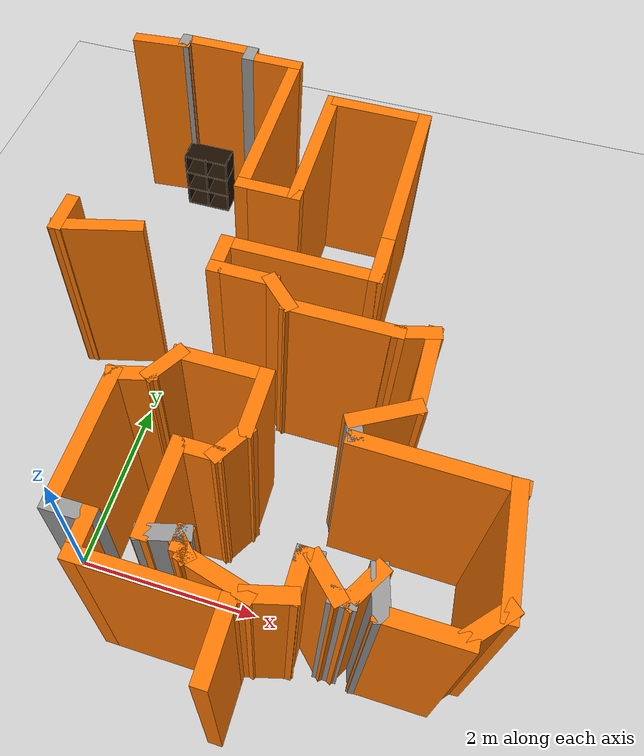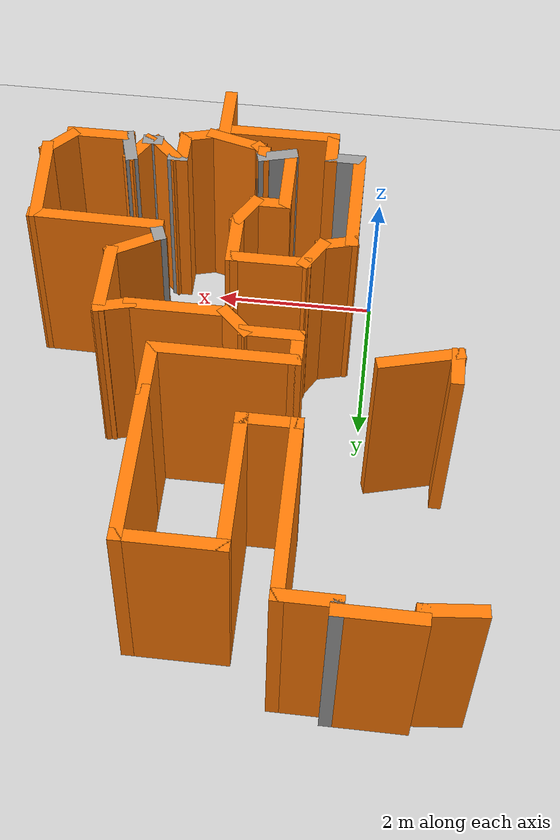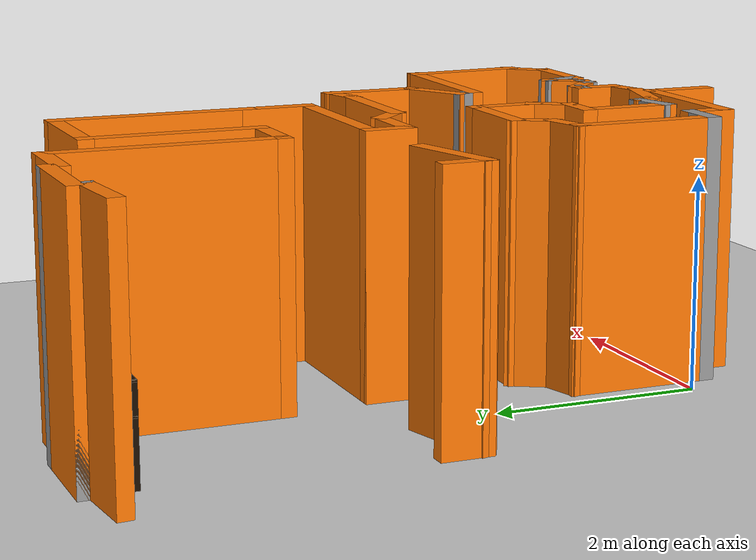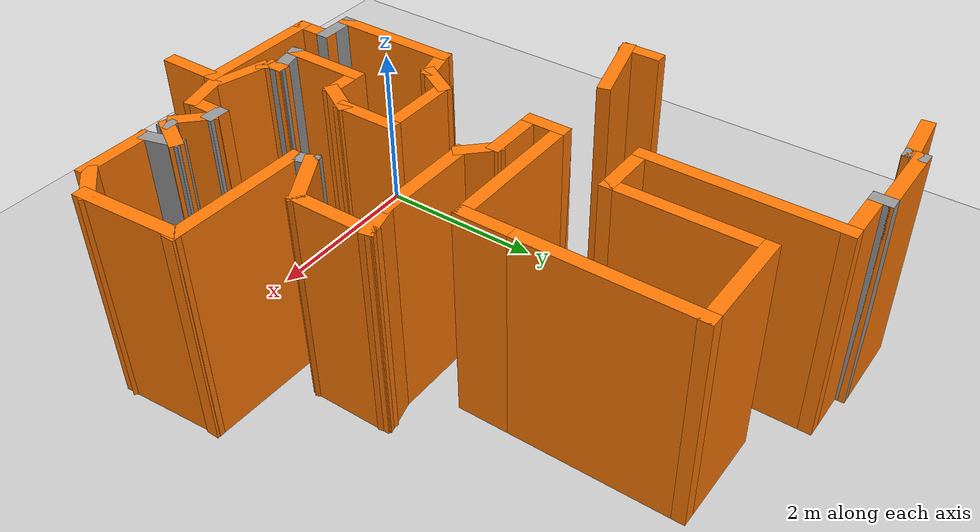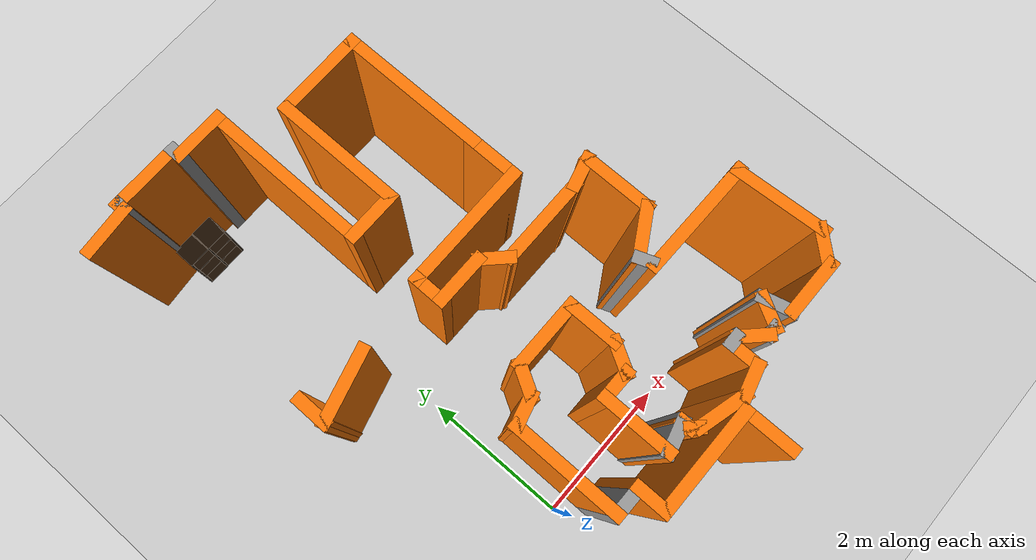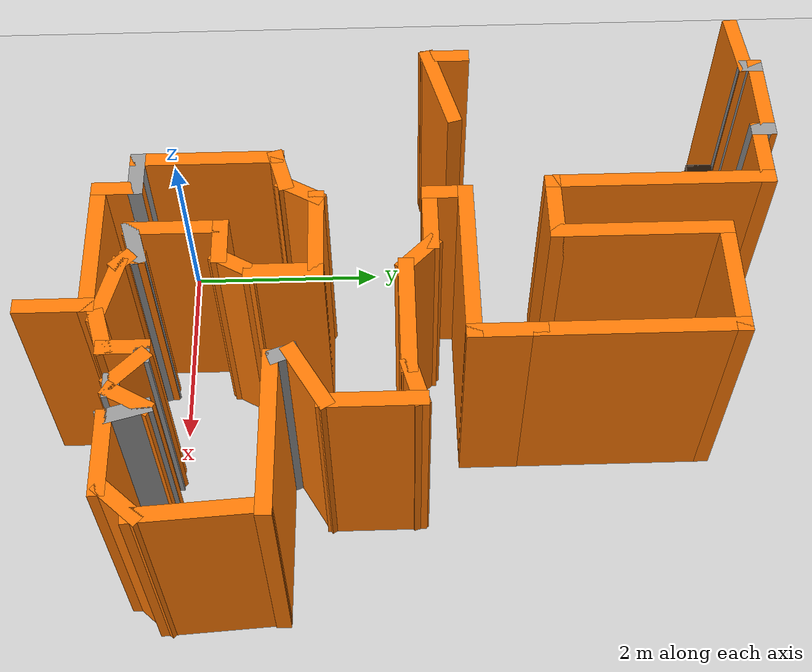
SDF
<sdf version="1.6">
 <world name="default">
  <model name="ground_plane">
   <static>1</static>
   <link name="link">
    <collision name="collision">
     <geometry><plane><normal>0 0 1</normal><size>100 100</size></plane></geometry>
     <surface>
      <contact><collide_bitmask>65535</collide_bitmask></contact>
      <friction><ode><mu>100</mu><mu2>50</mu2></ode></friction>
     </surface>
    </collision>
    <visual name="visual">
     <cast_shadows>0</cast_shadows>
     <geometry><plane><normal>0 0 1</normal><size>100 100</size></plane></geometry>
     <material>
      <script><uri>file://media/materials/scripts/gazebo.material</uri><name>Gazebo/Grey</name></script>
     </material>
    </visual>
   </link>
  </model>
  <model name="map_4">
   <pose>0.04124 -0.27835 0 0 -0 0</pose>
   <link name="Wall_114">
    <collision name="Wall_114_Collision">
     <geometry><box><size>0.75 0.15 2.5</size></box></geometry>
     <pose>0 0 1.25 0 -0 0</pose>
    </collision>
    <visual name="Wall_114_Visual">
     <pose>0 0 1.25 0 -0 0</pose>
     <geometry><box><size>0.75 0.15 2.5</size></box></geometry>
     <material>
      <script><uri>file://media/materials/scripts/gazebo.material</uri><name>Gazebo/Grey</name></script>
      <ambient>0.996078 0.47451 0.0196078 1</ambient>
     </material>
     <meta><layer>0</layer></meta>
    </visual>
    <pose>1.95475 -0.656423 0 0 -0 1.5708</pose>
   </link>
   <link name="Wall_115">
    <collision name="Wall_115_Collision">
     <geometry><box><size>1.5 0.15 2.5</size></box></geometry>
     <pose>0 0 1.25 0 -0 0</pose>
    </collision>
    <visual name="Wall_115_Visual">
     <pose>0 0 1.25 0 -0 0</pose>
     <geometry><box><size>1.5 0.15 2.5</size></box></geometry>
     <material>
      <script><uri>file://media/materials/scripts/gazebo.material</uri><name>Gazebo/Grey</name></script>
      <ambient>0.996078 0.47451 0.0196078 1</ambient>
     </material>
     <meta><layer>0</layer></meta>
    </visual>
    <pose>1.27975 -0.356422 0 0 -0 3.14159</pose>
   </link>
   <link name="Wall_116">
    <collision name="Wall_116_Collision">
     <geometry><box><size>0.5 0.15 2.5</size></box></geometry>
     <pose>0 0 1.25 0 -0 0</pose>
    </collision>
    <visual name="Wall_116_Visual">
     <pose>0 0 1.25 0 -0 0</pose>
     <geometry><box><size>0.5 0.15 2.5</size></box></geometry>
     <material>
      <script><uri>file://media/materials/scripts/gazebo.material</uri><name>Gazebo/Grey</name></script>
      <ambient>0.996078 0.47451 0.0196078 1</ambient>
     </material>
     <meta><layer>0</layer></meta>
    </visual>
    <pose>0.604748 -0.181422 0 0 -0 1.5708</pose>
   </link>
   <link name="Wall_117">
    <collision name="Wall_117_Collision">
     <geometry><box><size>0.5 0.15 2.5</size></box></geometry>
     <pose>0 0 1.25 0 -0 0</pose>
    </collision>
    <visual name="Wall_117_Visual">
     <pose>0 0 1.25 0 -0 0</pose>
     <geometry><box><size>0.5 0.15 2.5</size></box></geometry>
     <material>
      <script><uri>file://media/materials/scripts/gazebo.material</uri><name>Gazebo/Grey</name></script>
      <ambient>1 1 1 1</ambient>
     </material>
     <meta><layer>0</layer></meta>
    </visual>
    <pose>0.429748 -0.006423 0 0 -0 3.14159</pose>
   </link>
   <link name="Wall_118">
    <collision name="Wall_118_Collision">
     <geometry><box><size>1.5 0.15 2.5</size></box></geometry>
     <pose>0 0 1.25 0 -0 0</pose>
    </collision>
    <visual name="Wall_118_Visual">
     <pose>0 0 1.25 0 -0 0</pose>
     <geometry><box><size>1.5 0.15 2.5</size></box></geometry>
     <material>
      <script><uri>file://media/materials/scripts/gazebo.material</uri><name>Gazebo/Grey</name></script>
      <ambient>0.996078 0.47451 0.0196078 1</ambient>
     </material>
     <meta><layer>0</layer></meta>
    </visual>
    <pose>0.254748 0.668578 0 0 -0 1.5708</pose>
   </link>
   <link name="Wall_119">
    <collision name="Wall_119_Collision">
     <geometry><box><size>0.5 0.15 2.5</size></box></geometry>
     <pose>0 0 1.25 0 -0 0</pose>
    </collision>
    <visual name="Wall_119_Visual">
     <pose>0 0 1.25 0 -0 0</pose>
     <geometry><box><size>0.5 0.15 2.5</size></box></geometry>
     <material>
      <script><uri>file://media/materials/scripts/gazebo.material</uri><name>Gazebo/Grey</name></script>
      <ambient>0.996078 0.47451 0.0196078 1</ambient>
     </material>
     <meta><layer>0</layer></meta>
    </visual>
    <pose>0.423785 1.38887 0 0 -0 0.261799</pose>
   </link>
   <link name="Wall_120">
    <collision name="Wall_120_Collision">
     <geometry><box><size>0.5 0.15 2.5</size></box></geometry>
     <pose>0 0 1.25 0 -0 0</pose>
    </collision>
    <visual name="Wall_120_Visual">
     <pose>0 0 1.25 0 -0 0</pose>
     <geometry><box><size>0.5 0.15 2.5</size></box></geometry>
     <material>
      <script><uri>file://media/materials/scripts/gazebo.material</uri><name>Gazebo/Grey</name></script>
      <ambient>0.996078 0.47451 0.0196078 1</ambient>
     </material>
     <meta><layer>0</layer></meta>
    </visual>
    <pose>0.680322 1.58572 0 0 -0 1.0472</pose>
   </link>
   <link name="Wall_121">
    <collision name="Wall_121_Collision">
     <geometry><box><size>1 0.15 2.5</size></box></geometry>
     <pose>0 0 1.25 0 -0 0</pose>
    </collision>
    <visual name="Wall_121_Visual">
     <pose>0 0 1.25 0 -0 0</pose>
     <geometry><box><size>1 0.15 2.5</size></box></geometry>
     <material>
      <script><uri>file://media/materials/scripts/gazebo.material</uri><name>Gazebo/Grey</name></script>
      <ambient>0.996078 0.47451 0.0196078 1</ambient>
     </material>
     <meta><layer>0</layer></meta>
    </visual>
    <pose>1.19282 1.73727 0 0 -0 0</pose>
   </link>
   <link name="Wall_122">
    <collision name="Wall_122_Collision">
     <geometry><box><size>0.75 0.15 2.5</size></box></geometry>
     <pose>0 0 1.25 0 -0 0</pose>
    </collision>
    <visual name="Wall_122_Visual">
     <pose>0 0 1.25 0 -0 0</pose>
     <geometry><box><size>0.75 0.15 2.5</size></box></geometry>
     <material>
      <script><uri>file://media/materials/scripts/gazebo.material</uri><name>Gazebo/Grey</name></script>
      <ambient>0.996078 0.47451 0.0196078 1</ambient>
     </material>
     <meta><layer>0</layer></meta>
    </visual>
    <pose>1.61782 1.43727 0 0 -0 -1.5708</pose>
   </link>
   <link name="Wall_123">
    <collision name="Wall_123_Collision">
     <geometry><box><size>0.5 0.15 2.5</size></box></geometry>
     <pose>0 0 1.25 0 -0 0</pose>
    </collision>
    <visual name="Wall_123_Visual">
     <pose>0 0 1.25 0 -0 0</pose>
     <geometry><box><size>0.5 0.15 2.5</size></box></geometry>
     <material>
      <script><uri>file://media/materials/scripts/gazebo.material</uri><name>Gazebo/Grey</name></script>
      <ambient>0.996078 0.47451 0.0196078 1</ambient>
     </material>
     <meta><layer>0</layer></meta>
    </visual>
    <pose>1.53032 0.985719 0 0 -0 -2.0944</pose>
   </link>
   <link name="Wall_124">
    <collision name="Wall_124_Collision">
     <geometry><box><size>0.5 0.15 2.5</size></box></geometry>
     <pose>0 0 1.25 0 -0 0</pose>
    </collision>
    <visual name="Wall_124_Visual">
     <pose>0 0 1.25 0 -0 0</pose>
     <geometry><box><size>0.5 0.15 2.5</size></box></geometry>
     <material>
      <script><uri>file://media/materials/scripts/gazebo.material</uri><name>Gazebo/Grey</name></script>
      <ambient>0.996078 0.47451 0.0196078 1</ambient>
     </material>
     <meta><layer>0</layer></meta>
    </visual>
    <pose>1.26782 0.834164 0 0 -0 3.14159</pose>
   </link>
   <link name="Wall_125">
    <collision name="Wall_125_Collision">
     <geometry><box><size>1 0.15 2.5</size></box></geometry>
     <pose>0 0 1.25 0 -0 0</pose>
    </collision>
    <visual name="Wall_125_Visual">
     <pose>0 0 1.25 0 -0 0</pose>
     <geometry><box><size>1 0.15 2.5</size></box></geometry>
     <material>
      <script><uri>file://media/materials/scripts/gazebo.material</uri><name>Gazebo/Grey</name></script>
      <ambient>0.996078 0.47451 0.0196078 1</ambient>
     </material>
     <meta><layer>0</layer></meta>
    </visual>
    <pose>1.09282 0.409164 0 0 -0 -1.5708</pose>
   </link>
   <link name="Wall_126">
    <collision name="Wall_126_Collision">
     <geometry><box><size>0.5 0.15 2.5</size></box></geometry>
     <pose>0 0 1.25 0 -0 0</pose>
    </collision>
    <visual name="Wall_126_Visual">
     <pose>0 0 1.25 0 -0 0</pose>
     <geometry><box><size>0.5 0.15 2.5</size></box></geometry>
     <material>
      <script><uri>file://media/materials/scripts/gazebo.material</uri><name>Gazebo/Grey</name></script>
      <ambient>1 1 1 1</ambient>
     </material>
     <meta><layer>0</layer></meta>
    </visual>
    <pose>1.26186 0.029458 0 0 -0 0.261799</pose>
   </link>
   <link name="Wall_129">
    <collision name="Wall_129_Collision">
     <geometry><box><size>0.25 0.15 2.5</size></box></geometry>
     <pose>0 0 1.25 0 -0 0</pose>
    </collision>
    <visual name="Wall_129_Visual">
     <pose>0 0 1.25 0 -0 0</pose>
     <geometry><box><size>0.25 0.15 2.5</size></box></geometry>
     <material>
      <script><uri>file://media/materials/scripts/gazebo.material</uri><name>Gazebo/Grey</name></script>
      <ambient>0.996078 0.47451 0.0196078 1</ambient>
     </material>
     <meta><layer>0</layer></meta>
    </visual>
    <pose>1.4309 0.024751 0 0 -0 -1.5708</pose>
   </link>
   <link name="Wall_130">
    <collision name="Wall_130_Collision">
     <geometry><box><size>0.25 0.15 2.5</size></box></geometry>
     <pose>0 0 1.25 0 -0 0</pose>
    </collision>
    <visual name="Wall_130_Visual">
     <pose>0 0 1.25 0 -0 0</pose>
     <geometry><box><size>0.25 0.15 2.5</size></box></geometry>
     <material>
      <script><uri>file://media/materials/scripts/gazebo.material</uri><name>Gazebo/Grey</name></script>
      <ambient>0.996078 0.47451 0.0196078 1</ambient>
     </material>
     <meta><layer>0</layer></meta>
    </visual>
    <pose>1.46625 -0.060605 0 0 -0 -0.785398</pose>
   </link>
   <link name="Wall_131">
    <collision name="Wall_131_Collision">
     <geometry><box><size>0.75 0.15 2.5</size></box></geometry>
     <pose>0 0 1.25 0 -0 0</pose>
    </collision>
    <visual name="Wall_131_Visual">
     <pose>0 0 1.25 0 -0 0</pose>
     <geometry><box><size>0.75 0.15 2.5</size></box></geometry>
     <material>
      <script><uri>file://media/materials/scripts/gazebo.material</uri><name>Gazebo/Grey</name></script>
      <ambient>0.996078 0.47451 0.0196078 1</ambient>
     </material>
     <meta><layer>0</layer></meta>
    </visual>
    <pose>1.79138 -0.173606 0 0 -0 -0.261799</pose>
   </link>
   <link name="Wall_132">
    <collision name="Wall_132_Collision">
     <geometry><box><size>0.5 0.15 2.5</size></box></geometry>
     <pose>0 0 1.25 0 -0 0</pose>
    </collision>
    <visual name="Wall_132_Visual">
     <pose>0 0 1.25 0 -0 0</pose>
     <geometry><box><size>0.5 0.15 2.5</size></box></geometry>
     <material>
      <script><uri>file://media/materials/scripts/gazebo.material</uri><name>Gazebo/Grey</name></script>
      <ambient>0.996078 0.47451 0.0196078 1</ambient>
     </material>
     <meta><layer>0</layer></meta>
    </visual>
    <pose>2.2502 -0.205958 0 0 -0 0.261799</pose>
   </link>
   <link name="Wall_133">
    <collision name="Wall_133_Collision">
     <geometry><box><size>0.5 0.15 2.5</size></box></geometry>
     <pose>0 0 1.25 0 -0 0</pose>
    </collision>
    <visual name="Wall_133_Visual">
     <pose>0 0 1.25 0 -0 0</pose>
     <geometry><box><size>0.5 0.15 2.5</size></box></geometry>
     <material>
      <script><uri>file://media/materials/scripts/gazebo.material</uri><name>Gazebo/Grey</name></script>
      <ambient>0.996078 0.47451 0.0196078 1</ambient>
     </material>
     <meta><layer>0</layer></meta>
    </visual>
    <pose>2.41924 0.014336 0 0 -0 1.5708</pose>
   </link>
   <link name="Wall_134">
    <collision name="Wall_134_Collision">
     <geometry><box><size>0.25 0.15 2.5</size></box></geometry>
     <pose>0 0 1.25 0 -0 0</pose>
    </collision>
    <visual name="Wall_134_Visual">
     <pose>0 0 1.25 0 -0 0</pose>
     <geometry><box><size>0.25 0.15 2.5</size></box></geometry>
     <material>
      <script><uri>file://media/materials/scripts/gazebo.material</uri><name>Gazebo/Grey</name></script>
      <ambient>1 1 1 1</ambient>
     </material>
     <meta><layer>0</layer></meta>
    </visual>
    <pose>2.46924 0.189335 0 0 -0 0</pose>
   </link>
   <link name="Wall_135">
    <collision name="Wall_135_Collision">
     <geometry><box><size>0.5 0.15 2.5</size></box></geometry>
     <pose>0 0 1.25 0 -0 0</pose>
    </collision>
    <visual name="Wall_135_Visual">
     <pose>0 0 1.25 0 -0 0</pose>
     <geometry><box><size>0.5 0.15 2.5</size></box></geometry>
     <material>
      <script><uri>file://media/materials/scripts/gazebo.material</uri><name>Gazebo/Grey</name></script>
      <ambient>0.996078 0.47451 0.0196078 1</ambient>
     </material>
     <meta><layer>0</layer></meta>
    </visual>
    <pose>2.64298 0.065592 0 0 -0 -0.785398</pose>
   </link>
   <link name="Wall_136">
    <collision name="Wall_136_Collision">
     <geometry><box><size>0.25 0.15 2.5</size></box></geometry>
     <pose>0 0 1.25 0 -0 0</pose>
    </collision>
    <visual name="Wall_136_Visual">
     <pose>0 0 1.25 0 -0 0</pose>
     <geometry><box><size>0.25 0.15 2.5</size></box></geometry>
     <material>
      <script><uri>file://media/materials/scripts/gazebo.material</uri><name>Gazebo/Grey</name></script>
      <ambient>1 1 1 1</ambient>
     </material>
     <meta><layer>0</layer></meta>
    </visual>
    <pose>2.81672 -0.058152 0 0 -0 0</pose>
   </link>
   <link name="Wall_137">
    <collision name="Wall_137_Collision">
     <geometry><box><size>0.5 0.15 2.5</size></box></geometry>
     <pose>0 0 1.25 0 -0 0</pose>
    </collision>
    <visual name="Wall_137_Visual">
     <pose>0 0 1.25 0 -0 0</pose>
     <geometry><box><size>0.5 0.15 2.5</size></box></geometry>
     <material>
      <script><uri>file://media/materials/scripts/gazebo.material</uri><name>Gazebo/Grey</name></script>
      <ambient>0.996078 0.47451 0.0196078 1</ambient>
     </material>
     <meta><layer>0</layer></meta>
    </visual>
    <pose>2.95422 0.093402 0 0 -0 1.0472</pose>
   </link>
   <link name="Wall_138">
    <collision name="Wall_138_Collision">
     <geometry><box><size>0.5 0.15 2.5</size></box></geometry>
     <pose>0 0 1.25 0 -0 0</pose>
    </collision>
    <visual name="Wall_138_Visual">
     <pose>0 0 1.25 0 -0 0</pose>
     <geometry><box><size>0.5 0.15 2.5</size></box></geometry>
     <material>
      <script><uri>file://media/materials/scripts/gazebo.material</uri><name>Gazebo/Grey</name></script>
      <ambient>1 1 1 1</ambient>
     </material>
     <meta><layer>0</layer></meta>
    </visual>
    <pose>3.08702 0.07592 0 0 -0 -1.309</pose>
   </link>
   <link name="Wall_139">
    <collision name="Wall_139_Collision">
     <geometry><box><size>0.842522 0.15 2.5</size></box></geometry>
     <pose>0 0 1.25 0 -0 0</pose>
    </collision>
    <visual name="Wall_139_Visual">
     <pose>0 0 1.25 0 -0 0</pose>
     <geometry><box><size>0.842522 0.15 2.5</size></box></geometry>
     <material>
      <script><uri>file://media/materials/scripts/gazebo.material</uri><name>Gazebo/Grey</name></script>
      <ambient>0.996078 0.47451 0.0196078 1</ambient>
     </material>
     <meta><layer>0</layer></meta>
    </visual>
    <pose>3.47857 -0.093117 0 0 -0 0</pose>
   </link>
   <link name="Wall_140">
    <collision name="Wall_140_Collision">
     <geometry><box><size>0.53772 0.15 2.5</size></box></geometry>
     <pose>0 0 1.25 0 -0 0</pose>
    </collision>
    <visual name="Wall_140_Visual">
     <pose>0 0 1.25 0 -0 0</pose>
     <geometry><box><size>0.53772 0.15 2.5</size></box></geometry>
     <material>
      <script><uri>file://media/materials/scripts/gazebo.material</uri><name>Gazebo/Grey</name></script>
      <ambient>0.996078 0.47451 0.0196078 1</ambient>
     </material>
     <meta><layer>0</layer></meta>
    </visual>
    <pose>3.95601 0.095884 0 0 -0 0.827595</pose>
   </link>
   <link name="Wall_141">
    <collision name="Wall_141_Collision">
     <geometry><box><size>1.27527 0.15 2.5</size></box></geometry>
     <pose>0 0 1.25 0 -0 0</pose>
    </collision>
    <visual name="Wall_141_Visual">
     <pose>0 0 1.25 0 -0 0</pose>
     <geometry><box><size>1.27527 0.15 2.5</size></box></geometry>
     <material>
      <script><uri>file://media/materials/scripts/gazebo.material</uri><name>Gazebo/Grey</name></script>
      <ambient>0.996078 0.47451 0.0196078 1</ambient>
     </material>
     <meta><layer>0</layer></meta>
    </visual>
    <pose>4.05249 0.753929 0 0 -0 1.6325</pose>
   </link>
   <link name="Wall_142">
    <collision name="Wall_142_Collision">
     <geometry><box><size>1.63453 0.15 2.5</size></box></geometry>
     <pose>0 0 1.25 0 -0 0</pose>
    </collision>
    <visual name="Wall_142_Visual">
     <pose>0 0 1.25 0 -0 0</pose>
     <geometry><box><size>1.63453 0.15 2.5</size></box></geometry>
     <material>
      <script><uri>file://media/materials/scripts/gazebo.material</uri><name>Gazebo/Grey</name></script>
      <ambient>0.996078 0.47451 0.0196078 1</ambient>
     </material>
     <meta><layer>0</layer></meta>
    </visual>
    <pose>3.29875 1.32706 0 0 -0 3.12601</pose>
   </link>
   <link name="Wall_143">
    <collision name="Wall_143_Collision">
     <geometry><box><size>0.29196 0.15 2.5</size></box></geometry>
     <pose>0 0 1.25 0 -0 0</pose>
    </collision>
    <visual name="Wall_143_Visual">
     <pose>0 0 1.25 0 -0 0</pose>
     <geometry><box><size>0.29196 0.15 2.5</size></box></geometry>
     <material>
      <script><uri>file://media/materials/scripts/gazebo.material</uri><name>Gazebo/Grey</name></script>
      <ambient>1 1 1 1</ambient>
     </material>
     <meta><layer>0</layer></meta>
    </visual>
    <pose>2.53157 1.45132 0 0 -0 1.93073</pose>
   </link>
   <link name="Wall_144">
    <collision name="Wall_144_Collision">
     <geometry><box><size>0.75 0.15 2.5</size></box></geometry>
     <pose>0 0 1.25 0 -0 0</pose>
    </collision>
    <visual name="Wall_144_Visual">
     <pose>0 0 1.25 0 -0 0</pose>
     <geometry><box><size>0.75 0.15 2.5</size></box></geometry>
     <material>
      <script><uri>file://media/materials/scripts/gazebo.material</uri><name>Gazebo/Grey</name></script>
      <ambient>0.996078 0.47451 0.0196078 1</ambient>
     </material>
     <meta><layer>0</layer></meta>
    </visual>
    <pose>2.76638 1.66775 0 0 -0 0.523599</pose>
   </link>
   <link name="Wall_146">
    <collision name="Wall_146_Collision">
     <geometry><box><size>1 0.15 2.5</size></box></geometry>
     <pose>0 0 1.25 0 -0 0</pose>
    </collision>
    <visual name="Wall_146_Visual">
     <pose>0 0 1.25 0 -0 0</pose>
     <geometry><box><size>1 0.15 2.5</size></box></geometry>
     <material>
      <script><uri>file://media/materials/scripts/gazebo.material</uri><name>Gazebo/Grey</name></script>
      <ambient>0.996078 0.47451 0.0196078 1</ambient>
     </material>
     <meta><layer>0</layer></meta>
    </visual>
    <pose>3.02619 2.24275 0 0 -0 1.5708</pose>
   </link>
   <link name="Wall_147">
    <collision name="Wall_147_Collision">
     <geometry><box><size>0.5 0.15 2.5</size></box></geometry>
     <pose>0 0 1.25 0 -0 0</pose>
    </collision>
    <visual name="Wall_147_Visual">
     <pose>0 0 1.25 0 -0 0</pose>
     <geometry><box><size>0.5 0.15 2.5</size></box></geometry>
     <material>
      <script><uri>file://media/materials/scripts/gazebo.material</uri><name>Gazebo/Grey</name></script>
      <ambient>0.996078 0.47451 0.0196078 1</ambient>
     </material>
     <meta><layer>0</layer></meta>
    </visual>
    <pose>2.85715 2.62246 0 0 -0 -2.87979</pose>
   </link>
   <link name="Wall_148">
    <collision name="Wall_148_Collision">
     <geometry><box><size>1.25 0.15 2.5</size></box></geometry>
     <pose>0 0 1.25 0 -0 0</pose>
    </collision>
    <visual name="Wall_148_Visual">
     <pose>0 0 1.25 0 -0 0</pose>
     <geometry><box><size>1.25 0.15 2.5</size></box></geometry>
     <material>
      <script><uri>file://media/materials/scripts/gazebo.material</uri><name>Gazebo/Grey</name></script>
      <ambient>0.996078 0.47451 0.0196078 1</ambient>
     </material>
     <meta><layer>0</layer></meta>
    </visual>
    <pose>2.13811 2.57716 0 0 -0 3.14159</pose>
   </link>
   <link name="Wall_149">
    <collision name="Wall_149_Collision">
     <geometry><box><size>0.5 0.15 2.5</size></box></geometry>
     <pose>0 0 1.25 0 -0 0</pose>
    </collision>
    <visual name="Wall_149_Visual">
     <pose>0 0 1.25 0 -0 0</pose>
     <geometry><box><size>0.5 0.15 2.5</size></box></geometry>
     <material>
      <script><uri>file://media/materials/scripts/gazebo.material</uri><name>Gazebo/Grey</name></script>
      <ambient>0.996078 0.47451 0.0196078 1</ambient>
     </material>
     <meta><layer>0</layer></meta>
    </visual>
    <pose>1.46437 2.70091 0 0 -0 2.35619</pose>
   </link>
   <link name="Wall_150">
    <collision name="Wall_150_Collision">
     <geometry><box><size>0.75 0.15 2.5</size></box></geometry>
     <pose>0 0 1.25 0 -0 0</pose>
    </collision>
    <visual name="Wall_150_Visual">
     <pose>0 0 1.25 0 -0 0</pose>
     <geometry><box><size>0.75 0.15 2.5</size></box></geometry>
     <material>
      <script><uri>file://media/materials/scripts/gazebo.material</uri><name>Gazebo/Grey</name></script>
      <ambient>0.996078 0.47451 0.0196078 1</ambient>
     </material>
     <meta><layer>0</layer></meta>
    </visual>
    <pose>1.04063 2.82465 0 0 -0 3.14159</pose>
   </link>
   <link name="Wall_151">
    <collision name="Wall_151_Collision">
     <geometry><box><size>0.5 0.15 2.5</size></box></geometry>
     <pose>0 0 1.25 0 -0 0</pose>
    </collision>
    <visual name="Wall_151_Visual">
     <pose>0 0 1.25 0 -0 0</pose>
     <geometry><box><size>0.5 0.15 2.5</size></box></geometry>
     <material>
      <script><uri>file://media/materials/scripts/gazebo.material</uri><name>Gazebo/Grey</name></script>
      <ambient>0.996078 0.47451 0.0196078 1</ambient>
     </material>
     <meta><layer>0</layer></meta>
    </visual>
    <pose>0.740628 2.99965 0 0 -0 1.5708</pose>
   </link>
   <link name="Wall_152">
    <collision name="Wall_152_Collision">
     <geometry><box><size>1.75 0.15 2.5</size></box></geometry>
     <pose>0 0 1.25 0 -0 0</pose>
    </collision>
    <visual name="Wall_152_Visual">
     <pose>0 0 1.25 0 -0 0</pose>
     <geometry><box><size>1.75 0.15 2.5</size></box></geometry>
     <material>
      <script><uri>file://media/materials/scripts/gazebo.material</uri><name>Gazebo/Grey</name></script>
      <ambient>0.996078 0.47451 0.0196078 1</ambient>
     </material>
     <meta><layer>0</layer></meta>
    </visual>
    <pose>1.54063 3.17465 0 0 -0 0</pose>
   </link>
   <link name="Wall_153">
    <collision name="Wall_153_Collision">
     <geometry><box><size>0.75 0.15 2.5</size></box></geometry>
     <pose>0 0 1.25 0 -0 0</pose>
    </collision>
    <visual name="Wall_153_Visual">
     <pose>0 0 1.25 0 -0 0</pose>
     <geometry><box><size>0.75 0.15 2.5</size></box></geometry>
     <material>
      <script><uri>file://media/materials/scripts/gazebo.material</uri><name>Gazebo/Grey</name></script>
      <ambient>0.996078 0.47451 0.0196078 1</ambient>
     </material>
     <meta><layer>0</layer></meta>
    </visual>
    <pose>2.34063 3.47465 0 0 -0 1.5708</pose>
   </link>
   <link name="Wall_154">
    <collision name="Wall_154_Collision">
     <geometry><box><size>2 0.15 2.5</size></box></geometry>
     <pose>0 0 1.25 0 -0 0</pose>
    </collision>
    <visual name="Wall_154_Visual">
     <pose>0 0 1.25 0 -0 0</pose>
     <geometry><box><size>2 0.15 2.5</size></box></geometry>
     <material>
      <script><uri>file://media/materials/scripts/gazebo.material</uri><name>Gazebo/Grey</name></script>
      <ambient>0.996078 0.47451 0.0196078 1</ambient>
     </material>
     <meta><layer>0</layer></meta>
    </visual>
    <pose>2.34063 4.69965 0 0 -0 1.5708</pose>
   </link>
   <link name="Wall_159">
    <collision name="Wall_159_Collision">
     <geometry><box><size>1.25 0.15 2.5</size></box></geometry>
     <pose>0 0 1.25 0 -0 0</pose>
    </collision>
    <visual name="Wall_159_Visual">
     <pose>0 0 1.25 0 -0 0</pose>
     <geometry><box><size>1.25 0.15 2.5</size></box></geometry>
     <material>
      <script><uri>file://media/materials/scripts/gazebo.material</uri><name>Gazebo/Grey</name></script>
      <ambient>0.996078 0.47451 0.0196078 1</ambient>
     </material>
     <meta><layer>0</layer></meta>
    </visual>
    <pose>1.79063 5.62465 0 0 -0 3.14159</pose>
   </link>
   <link name="Wall_160">
    <collision name="Wall_160_Collision">
     <geometry><box><size>1.75 0.15 2.5</size></box></geometry>
     <pose>0 0 1.25 0 -0 0</pose>
    </collision>
    <visual name="Wall_160_Visual">
     <pose>0 0 1.25 0 -0 0</pose>
     <geometry><box><size>1.75 0.15 2.5</size></box></geometry>
     <material>
      <script><uri>file://media/materials/scripts/gazebo.material</uri><name>Gazebo/Grey</name></script>
      <ambient>0.996078 0.47451 0.0196078 1</ambient>
     </material>
     <meta><layer>0</layer></meta>
    </visual>
    <pose>1.24063 4.82465 0 0 -0 -1.5708</pose>
   </link>
   <link name="Wall_161">
    <collision name="Wall_161_Collision">
     <geometry><box><size>0.75 0.15 2.5</size></box></geometry>
     <pose>0 0 1.25 0 -0 0</pose>
    </collision>
    <visual name="Wall_161_Visual">
     <pose>0 0 1.25 0 -0 0</pose>
     <geometry><box><size>0.75 0.15 2.5</size></box></geometry>
     <material>
      <script><uri>file://media/materials/scripts/gazebo.material</uri><name>Gazebo/Grey</name></script>
      <ambient>0.996078 0.47451 0.0196078 1</ambient>
     </material>
     <meta><layer>0</layer></meta>
    </visual>
    <pose>0.940628 4.02465 0 0 -0 3.14159</pose>
   </link>
   <link name="Wall_162">
    <collision name="Wall_162_Collision">
     <geometry><box><size>2.25 0.15 2.5</size></box></geometry>
     <pose>0 0 1.25 0 -0 0</pose>
    </collision>
    <visual name="Wall_162_Visual">
     <pose>0 0 1.25 0 -0 0</pose>
     <geometry><box><size>2.25 0.15 2.5</size></box></geometry>
     <material>
      <script><uri>file://media/materials/scripts/gazebo.material</uri><name>Gazebo/Grey</name></script>
      <ambient>0.996078 0.47451 0.0196078 1</ambient>
     </material>
     <meta><layer>0</layer></meta>
    </visual>
    <pose>0.640628 5.07465 0 0 -0 1.5708</pose>
   </link>
   <link name="Wall_163">
    <collision name="Wall_163_Collision">
     <geometry><box><size>0.75 0.15 2.5</size></box></geometry>
     <pose>0 0 1.25 0 -0 0</pose>
    </collision>
    <visual name="Wall_163_Visual">
     <pose>0 0 1.25 0 -0 0</pose>
     <geometry><box><size>0.75 0.15 2.5</size></box></geometry>
     <material>
      <script><uri>file://media/materials/scripts/gazebo.material</uri><name>Gazebo/Grey</name></script>
      <ambient>0.996078 0.47451 0.0196078 1</ambient>
     </material>
     <meta><layer>0</layer></meta>
    </visual>
    <pose>0.340628 6.12465 0 0 -0 3.14159</pose>
   </link>
   <link name="Wall_164">
    <collision name="Wall_164_Collision">
     <geometry><box><size>0.25 0.15 2.5</size></box></geometry>
     <pose>0 0 1.25 0 -0 0</pose>
    </collision>
    <visual name="Wall_164_Visual">
     <pose>0 0 1.25 0 -0 0</pose>
     <geometry><box><size>0.25 0.15 2.5</size></box></geometry>
     <material>
      <script><uri>file://media/materials/scripts/gazebo.material</uri><name>Gazebo/Grey</name></script>
      <ambient>1 1 1 1</ambient>
     </material>
     <meta><layer>0</layer></meta>
    </visual>
    <pose>0.040628 6.17465 0 0 -0 1.5708</pose>
   </link>
   <link name="Wall_165">
    <collision name="Wall_165_Collision">
     <geometry><box><size>1 0.15 2.5</size></box></geometry>
     <pose>0 0 1.25 0 -0 0</pose>
    </collision>
    <visual name="Wall_165_Visual">
     <pose>0 0 1.25 0 -0 0</pose>
     <geometry><box><size>1 0.15 2.5</size></box></geometry>
     <material>
      <script><uri>file://media/materials/scripts/gazebo.material</uri><name>Gazebo/Grey</name></script>
      <ambient>0.996078 0.47451 0.0196078 1</ambient>
     </material>
     <meta><layer>0</layer></meta>
    </visual>
    <pose>-0.384372 6.22465 0 0 -0 3.14159</pose>
   </link>
   <link name="Wall_166">
    <collision name="Wall_166_Collision">
     <geometry><box><size>0.25 0.15 2.5</size></box></geometry>
     <pose>0 0 1.25 0 -0 0</pose>
    </collision>
    <visual name="Wall_166_Visual">
     <pose>0 0 1.25 0 -0 0</pose>
     <geometry><box><size>0.25 0.15 2.5</size></box></geometry>
     <material>
      <script><uri>file://media/materials/scripts/gazebo.material</uri><name>Gazebo/Grey</name></script>
      <ambient>1 1 1 1</ambient>
     </material>
     <meta><layer>0</layer></meta>
    </visual>
    <pose>-0.809372 6.17465 0 0 -0 -1.5708</pose>
   </link>
   <link name="Wall_167">
    <collision name="Wall_167_Collision">
     <geometry><box><size>0.728027 0.15 2.5</size></box></geometry>
     <pose>0 0 1.25 0 -0 0</pose>
    </collision>
    <visual name="Wall_167_Visual">
     <pose>0 0 1.25 0 -0 0</pose>
     <geometry><box><size>0.728027 0.15 2.5</size></box></geometry>
     <material>
      <script><uri>file://media/materials/scripts/gazebo.material</uri><name>Gazebo/Grey</name></script>
      <ambient>0.996078 0.47451 0.0196078 1</ambient>
     </material>
     <meta><layer>0</layer></meta>
    </visual>
    <pose>-1.0971 6.09739 0 0 -0 -3.04711</pose>
   </link>
   <link name="Wall_176">
    <collision name="Wall_176_Collision">
     <geometry><box><size>1 0.15 2.5</size></box></geometry>
     <pose>0 0 1.25 0 -0 0</pose>
    </collision>
    <visual name="Wall_176_Visual">
     <pose>0 0 1.25 0 -0 0</pose>
     <geometry><box><size>1 0.15 2.5</size></box></geometry>
     <material>
      <script><uri>file://media/materials/scripts/gazebo.material</uri><name>Gazebo/Grey</name></script>
      <ambient>0.996078 0.47451 0.0196078 1</ambient>
     </material>
     <meta><layer>0</layer></meta>
    </visual>
    <pose>-0.630183 2.98664 0 0 -0 0.261799</pose>
   </link>
   <link name="Wall_32">
    <collision name="Wall_32_Collision">
     <geometry><box><size>0.5 0.15 2.5</size></box></geometry>
     <pose>0 0 1.25 0 -0 0</pose>
    </collision>
    <visual name="Wall_32_Visual">
     <pose>0 0 1.25 0 -0 0</pose>
     <geometry><box><size>0.5 0.15 2.5</size></box></geometry>
     <material>
      <script><uri>file://media/materials/scripts/gazebo.material</uri><name>Gazebo/Grey</name></script>
      <ambient>0.996078 0.47451 0.0196078 1</ambient>
     </material>
     <meta><layer>0</layer></meta>
    </visual>
    <pose>-1.0407 3.05164 0 0 -0 -1.5708</pose>
   </link>
   <static>1</static>
  </model>
  <model name="6_Cube_StorageE">
   <link name="Wall_0">
    <pose>0 0 0.01 0 -0 0</pose>
    <inertial>
     <mass>1.6201</mass>
     <inertia><ixx>0.0119</ixx><iyy>0.0631</iyy><izz>0.0513</izz><ixy>0</ixy><ixz>0</ixz><iyz>0</iyz></inertia>
    </inertial>
    <collision name="Wall_0_Collision"><geometry><box><size>0.616 0.296 0.02</size></box></geometry></collision>
    <visual name="Wall_0_Visual">
     <geometry><box><size>0.616 0.296 0.02</size></box></geometry>
     <material>
      <script><uri>file://media/materials/scripts/gazebo.material</uri><name>Gazebo/Grey</name></script>
      <ambient>0.105882 0.0509804 0 1</ambient>
     </material>
    </visual>
   </link>
   <joint name="0_2" type="fixed">
    <pose>-0.308 0 0 0 -0 0</pose>
    <parent>Wall_2</parent>
    <child>Wall_0</child>
    <axis>
     <xyz>1 0 0</xyz>
     <use_parent_model_frame>0</use_parent_model_frame>
     <limit><lower>-1e+16</lower><upper>1e+16</upper></limit>
    </axis>
   </joint>
   <joint name="0_12" type="fixed">
    <parent>Wall_12</parent>
    <child>Wall_0</child>
    <axis>
     <xyz>0 0 1</xyz>
     <use_parent_model_frame>0</use_parent_model_frame>
     <limit><lower>-1e+16</lower><upper>1e+16</upper></limit>
    </axis>
   </joint>
   <joint name="0_4" type="fixed">
    <pose>0.308 0 0 0 -0 0</pose>
    <parent>Wall_4</parent>
    <child>Wall_0</child>
    <axis>
     <xyz>1 0 0</xyz>
     <use_parent_model_frame>0</use_parent_model_frame>
     <limit><lower>-1e+16</lower><upper>1e+16</upper></limit>
    </axis>
   </joint>
   <link name="Wall_10">
    <pose>0 0 0.61 0 -0 0</pose>
    <inertial>
     <mass>1.6201</mass>
     <inertia><ixx>0.0119</ixx><iyy>0.0631</iyy><izz>0.0513</izz><ixy>0</ixy><ixz>0</ixz><iyz>0</iyz></inertia>
    </inertial>
    <collision name="Wall_10_Collision"><geometry><box><size>0.616 0.296 0.02</size></box></geometry></collision>
    <visual name="Wall_10_Visual">
     <geometry><box><size>0.616 0.296 0.02</size></box></geometry>
     <material>
      <script><uri>file://media/materials/scripts/gazebo.material</uri><name>Gazebo/Grey</name></script>
      <ambient>0.105882 0.0509804 0 1</ambient>
     </material>
    </visual>
   </link>
   <joint name="10_2" type="fixed">
    <pose>-0.308 0 0 0 -0 0</pose>
    <parent>Wall_2</parent>
    <child>Wall_10</child>
    <axis>
     <xyz>1 0 0</xyz>
     <use_parent_model_frame>0</use_parent_model_frame>
     <limit><lower>-1e+16</lower><upper>1e+16</upper></limit>
    </axis>
   </joint>
   <joint name="10_12" type="fixed">
    <parent>Wall_12</parent>
    <child>Wall_10</child>
    <axis>
     <xyz>0 0 1</xyz>
     <use_parent_model_frame>0</use_parent_model_frame>
     <limit><lower>-1e+16</lower><upper>1e+16</upper></limit>
    </axis>
   </joint>
   <joint name="10_4" type="fixed">
    <pose>0.308 0 0 0 -0 0</pose>
    <parent>Wall_4</parent>
    <child>Wall_10</child>
    <axis>
     <xyz>1 0 0</xyz>
     <use_parent_model_frame>0</use_parent_model_frame>
     <limit><lower>-1e+16</lower><upper>1e+16</upper></limit>
    </axis>
   </joint>
   <link name="Wall_12">
    <pose>0 0 0.4575 0 -0 0</pose>
    <inertial>
     <mass>2.4065</mass>
     <inertia><ixx>0.0177</ixx><iyy>0.1855</iyy><izz>0.168</izz><ixy>0</ixy><ixz>0</ixz><iyz>0</iyz></inertia>
    </inertial>
    <collision name="Wall_12_Collision"><geometry><box><size>0.02 0.296 0.915</size></box></geometry></collision>
    <visual name="Wall_12_Visual">
     <geometry><box><size>0.02 0.296 0.915</size></box></geometry>
     <material>
      <script><uri>file://media/materials/scripts/gazebo.material</uri><name>Gazebo/Grey</name></script>
      <ambient>0.105882 0.0509804 0 1</ambient>
     </material>
    </visual>
   </link>
   <link name="Wall_2">
    <pose>-0.298 0 0.4575 0 -0 0</pose>
    <inertial>
     <mass>2.4065</mass>
     <inertia><ixx>0.0177</ixx><iyy>0.1855</iyy><izz>0.168</izz><ixy>0</ixy><ixz>0</ixz><iyz>0</iyz></inertia>
    </inertial>
    <collision name="Wall_2_Collision"><geometry><box><size>0.02 0.296 0.915</size></box></geometry></collision>
    <visual name="Wall_2_Visual">
     <geometry><box><size>0.02 0.296 0.915</size></box></geometry>
     <material>
      <script><uri>file://media/materials/scripts/gazebo.material</uri><name>Gazebo/Grey</name></script>
      <ambient>0.105882 0.0509804 0 1</ambient>
     </material>
    </visual>
   </link>
   <link name="Wall_4">
    <pose>0.298 0 0.4575 0 -0 0</pose>
    <inertial>
     <mass>2.4065</mass>
     <inertia><ixx>0.0177</ixx><iyy>0.1855</iyy><izz>0.168</izz><ixy>0</ixy><ixz>0</ixz><iyz>0</iyz></inertia>
    </inertial>
    <collision name="Wall_4_Collision"><geometry><box><size>0.02 0.296 0.915</size></box></geometry></collision>
    <visual name="Wall_4_Visual">
     <geometry><box><size>0.02 0.296 0.915</size></box></geometry>
     <material>
      <script><uri>file://media/materials/scripts/gazebo.material</uri><name>Gazebo/Grey</name></script>
      <ambient>0.105882 0.0509804 0 1</ambient>
     </material>
    </visual>
   </link>
   <link name="Wall_6">
    <pose>0 0 0.905 0 -0 0</pose>
    <inertial>
     <mass>1.6201</mass>
     <inertia><ixx>0.0119</ixx><iyy>0.0631</iyy><izz>0.0513</izz><ixy>0</ixy><ixz>0</ixz><iyz>0</iyz></inertia>
    </inertial>
    <collision name="Wall_6_Collision"><geometry><box><size>0.616 0.296 0.02</size></box></geometry></collision>
    <visual name="Wall_6_Visual">
     <geometry><box><size>0.616 0.296 0.02</size></box></geometry>
     <material>
      <script><uri>file://media/materials/scripts/gazebo.material</uri><name>Gazebo/Grey</name></script>
      <ambient>0.105882 0.0509804 0 1</ambient>
     </material>
    </visual>
   </link>
   <joint name="6_2" type="fixed">
    <pose>-0.308 0 0 0 -0 0</pose>
    <parent>Wall_2</parent>
    <child>Wall_6</child>
    <axis>
     <xyz>2 0 0</xyz>
     <use_parent_model_frame>0</use_parent_model_frame>
     <limit><lower>-1e+16</lower><upper>1e+16</upper></limit>
    </axis>
   </joint>
   <joint name="6_12" type="fixed">
    <parent>Wall_12</parent>
    <child>Wall_6</child>
    <axis>
     <xyz>0 0 1</xyz>
     <use_parent_model_frame>0</use_parent_model_frame>
     <limit><lower>-1e+16</lower><upper>1e+16</upper></limit>
    </axis>
   </joint>
   <joint name="6_4" type="fixed">
    <pose>0.308 0 0 0 -0 0</pose>
    <parent>Wall_4</parent>
    <child>Wall_6</child>
    <axis>
     <xyz>1 0 0</xyz>
     <use_parent_model_frame>0</use_parent_model_frame>
     <limit><lower>-1e+16</lower><upper>1e+16</upper></limit>
    </axis>
   </joint>
   <link name="Wall_8">
    <pose>0 0 0.305 0 -0 0</pose>
    <inertial>
     <mass>1.6201</mass>
     <inertia><ixx>0.0119</ixx><iyy>0.0631</iyy><izz>0.0513</izz><ixy>0</ixy><ixz>0</ixz><iyz>0</iyz></inertia>
    </inertial>
    <collision name="Wall_8_Collision"><geometry><box><size>0.616 0.296 0.02</size></box></geometry></collision>
    <visual name="Wall_8_Visual">
     <geometry><box><size>0.616 0.296 0.02</size></box></geometry>
     <material>
      <script><uri>file://media/materials/scripts/gazebo.material</uri><name>Gazebo/Grey</name></script>
      <ambient>0.105882 0.0509804 0 1</ambient>
     </material>
    </visual>
   </link>
   <joint name="8_2" type="fixed">
    <pose>-0.308 0 0 0 -0 0</pose>
    <parent>Wall_2</parent>
    <child>Wall_8</child>
    <axis>
     <xyz>1 0 0</xyz>
     <use_parent_model_frame>0</use_parent_model_frame>
     <limit><lower>-1e+16</lower><upper>1e+16</upper></limit>
    </axis>
   </joint>
   <joint name="8_12" type="fixed">
    <parent>Wall_12</parent>
    <child>Wall_8</child>
    <axis>
     <xyz>0 0 1</xyz>
     <use_parent_model_frame>0</use_parent_model_frame>
     <limit><lower>-1e+16</lower><upper>1e+16</upper></limit>
    </axis>
   </joint>
   <joint name="8_4" type="fixed">
    <pose>0.308 0 0 0 -0 0</pose>
    <parent>Wall_4</parent>
    <child>Wall_8</child>
    <axis>
     <xyz>1 0 0</xyz>
     <use_parent_model_frame>0</use_parent_model_frame>
     <limit><lower>-1e+16</lower><upper>1e+16</upper></limit>
    </axis>
   </joint>
   <static>1</static>
   <pose>-0.471928 5.64068 0 0 -0 0</pose>
  </model>
 </world>
</sdf>
